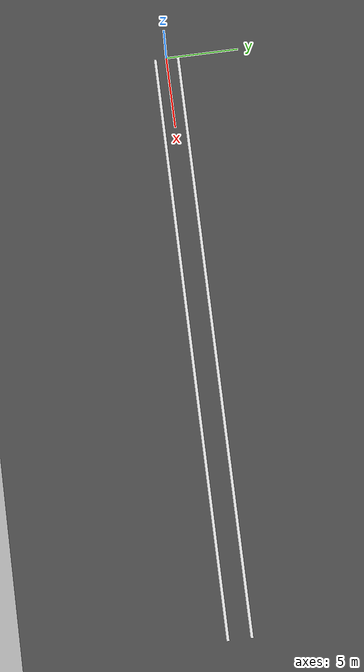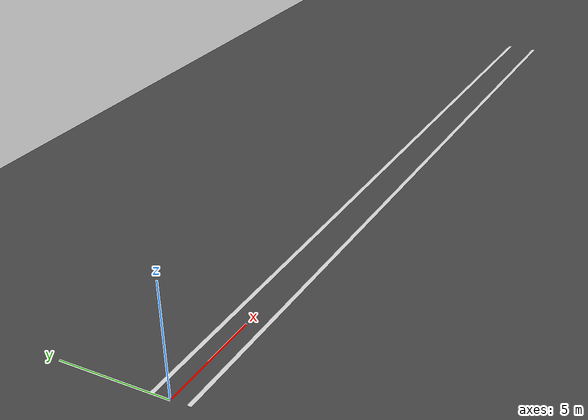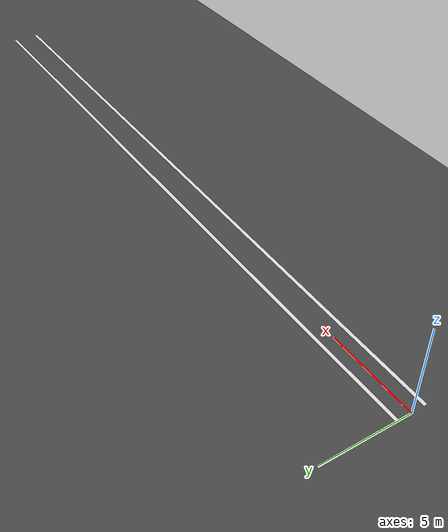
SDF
<?xml version="1.0" ?>
<sdf version="1.6">
  <world name="default">

    <include>
      <uri>model://sun</uri>
    </include>

    <physics type="ode">
      <max_step_size>0.001</max_step_size>
      <real_time_factor>1.0</real_time_factor>
    </physics>

    <model name="asphalt_ground">
      <static>true</static>
      <link name="link">
        <collision name="collision">
          <geometry>
            <plane>
              <normal>0 0 1</normal>
              <size>100 100</size>
            </plane>
          </geometry>
        </collision>
        <visual name="visual">
          <geometry>
            <plane>
              <normal>0 0 1</normal>
              <size>100 100</size>
            </plane>
          </geometry>
          <material>
            <script>
              <uri>file://media/materials/scripts/gazebo.material</uri>
              <name>Gazebo/DarkGrey</name>
            </script>
          </material>
        </visual>
      </link>
    </model>

    <model name="left_lane">
      <static>true</static>
      <pose>20 0.8 0.02 0 0 0</pose>
      <link name="link">
        <visual name="visual">
          <geometry>
            <box><size>40 0.2 0.001</size></box>
          </geometry>
          <material>
            <script>
              <uri>file://media/materials/scripts/gazebo.material</uri>
              <name>Gazebo/White</name>
            </script>
          </material>
        </visual>
      </link>
    </model>

    <model name="right_lane">
      <static>true</static>
      <pose>20 -0.8 0.02 0 0 0</pose>
      <link name="link">
        <visual name="visual">
          <geometry>
            <box><size>40 0.2 0.001</size></box>
          </geometry>
          <material>
            <script>
              <uri>file://media/materials/scripts/gazebo.material</uri>
              <name>Gazebo/White</name>
            </script>
          </material>
        </visual>
      </link>
    </model>
  </world>
</sdf>
